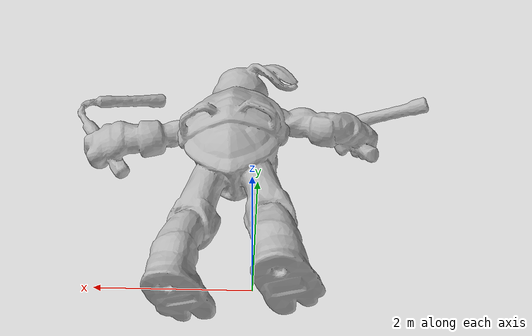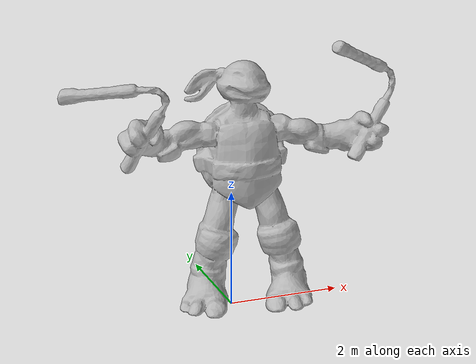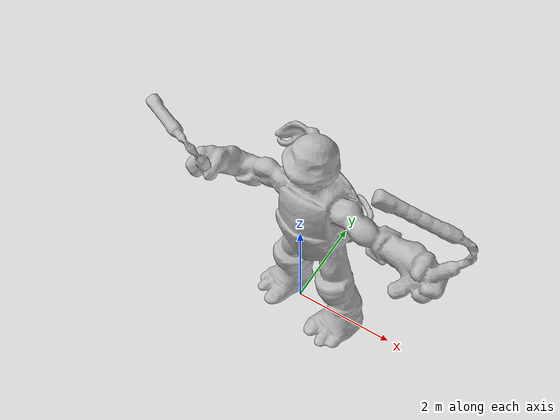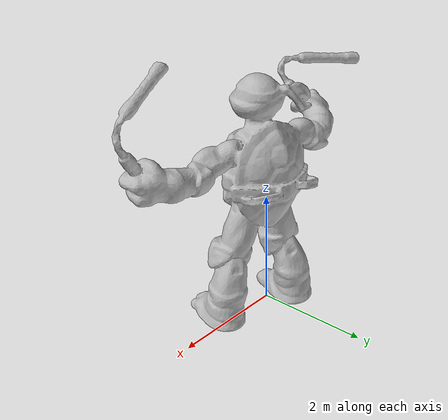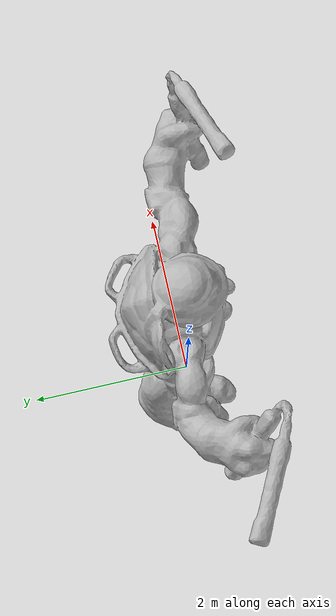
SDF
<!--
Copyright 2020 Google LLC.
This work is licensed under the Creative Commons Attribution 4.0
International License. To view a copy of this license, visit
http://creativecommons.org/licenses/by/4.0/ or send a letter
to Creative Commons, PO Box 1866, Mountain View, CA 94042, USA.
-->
<?xml version="1.0" ?>
<sdf version="1.6">
  <model name="Schleich_African_Black_Rhino">
    <link name="link_0">
      <visual name="visual">
        <geometry>
          <mesh>
            <uri>meshes/model.obj</uri>
            <scale> 40 40 40 </scale>
          </mesh>
        </geometry>
      </visual>
      <collision name="collision_0">
        <geometry>
          <mesh>
            <uri>meshes/model.obj</uri>
            <scale> 40 40 40  </scale>
          </mesh>
        </geometry>
      </collision>
    </link>
  </model>
</sdf>
